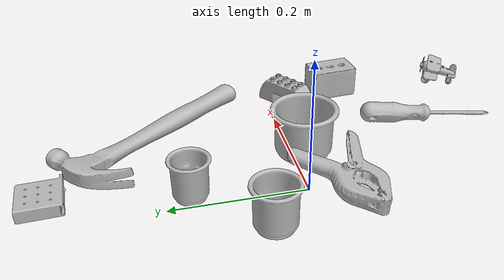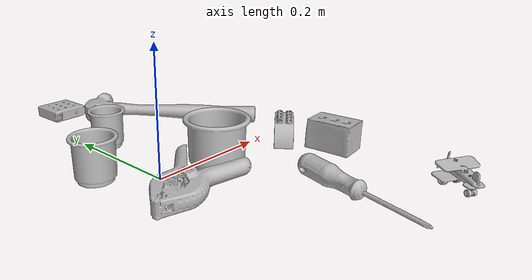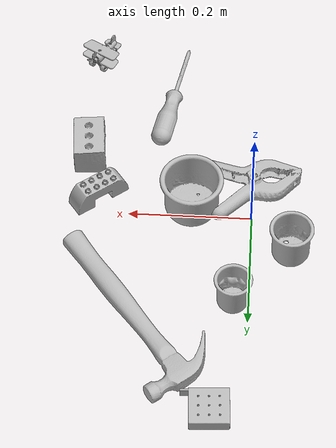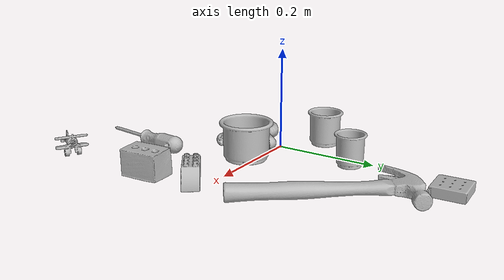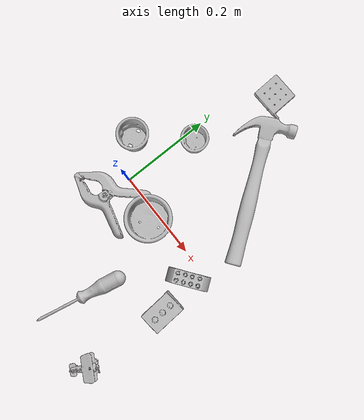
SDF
<sdf version="1.4">
  <world name="default">
    <light name="light1" type="point">
      <pose>0 0 1 0 0 0</pose>
      <diffuse>3 3 3 1</diffuse>
      <specular>3 3 3 1</specular>
    </light>
    <light name="light2" type="point">
      <pose>0 0.5 2 0 0 0</pose>
      <diffuse>1 1 1 1</diffuse>
      <specular>1 1 1 1</specular>
    </light>
    <light name="light3" type="point">
      <pose>0 0.5 2 0 0 0</pose>
      <diffuse>3 3 3 1</diffuse>
      <specular>3 3 3 1</specular>
    </light>
    <scene>
      <ambient>0.7 0.7 0.7</ambient>
    </scene>
    <model name="cup1">
      <link name="link_cup1">
        <collision name="default">
          <geometry>
            <mesh>
              <uri>model://j_cups/collision_meshes/collision.obj</uri>
              <scale>1.0 1.0 1.0</scale>
            </mesh>
          </geometry>
          <surface>
            <friction>
              <ode>
                <mu>0.5</mu>
                <mu2>0.5</mu2>
              </ode>
            </friction>
          <contact>
        <ode>
            <max_vel>0</max_vel>
            <min_depth>0.0001</min_depth>
            <kp>1e8</kp>
        </ode>
    </contact></surface>
        </collision>
        <visual name="default">
          <geometry>
            <mesh>
              <uri>model://j_cups/visual_meshes/visual.dae</uri>
              <scale>1.0 1.0 1.0</scale>
            </mesh>
          </geometry>
        </visual>
        <inertial>
          <mass>0.1112113818526268</mass>
          <pose>0.0006164852529764175 0.0005398975918069482 -0.0013479019980877638 0.030303955005909274 0.03757984422505388 0.4386955526072484</pose>
          <inertia>
            <ixx>0.00016329347</ixx>
            <iyy>0.00016499148</iyy>
            <izz>0.00018824349</izz>
            <ixy>0</ixy>
            <ixz>0</ixz>
            <iyz>0</iyz>
          </inertia>
        </inertial>
      </link>
      <pose>0.0980294868350029 -0.019607625901699066 0.03798900544643402 5.755162769988901e-08 3.91384881684182e-08 0.8175491965230288</pose>
    </model>
    <model name="cup2">
      <link name="link_cup2">
        <collision name="default">
          <geometry>
            <mesh>
              <uri>model://b_cups/collision_meshes/collision.obj</uri>
              <scale>1.0 1.0 1.0</scale>
            </mesh>
          </geometry>
          <surface>
            <friction>
              <ode>
                <mu>0.5</mu>
                <mu2>0.5</mu2>
              </ode>
            </friction>
          <contact>
        <ode>
            <max_vel>0</max_vel>
            <min_depth>0.0001</min_depth>
            <kp>1e8</kp>
        </ode>
    </contact></surface>
        </collision>
        <visual name="default">
          <geometry>
            <mesh>
              <uri>model://b_cups/visual_meshes/visual.dae</uri>
              <scale>1.0 1.0 1.0</scale>
            </mesh>
          </geometry>
        </visual>
        <inertial>
          <mass>0.040588438510894775</mass>
          <pose>0.0005182006862014532 0.001805859268642962 -0.001338181202299893 0.11356319114734177 0.03872522211554688 -0.34569586720892936</pose>
          <inertia>
            <ixx>2.6567977e-05</ixx>
            <iyy>2.6063572e-05</iyy>
            <izz>2.235645e-05</izz>
            <ixy>0</ixy>
            <ixz>0</ixz>
            <iyz>0</iyz>
          </inertia>
        </inertial>
      </link>
      <pose>0.02439250610768795 0.16338540613651276 0.03199625760316849 -0.007625097187774461 -0.003871663013366667 -3.111798397696703</pose>
    </model>
    <model name="cup3">
      <link name="link_cup3">
        <collision name="default">
          <geometry>
            <mesh>
              <uri>model://d_cups/collision_meshes/collision.obj</uri>
              <scale>1.0 1.0 1.0</scale>
            </mesh>
          </geometry>
          <surface>
            <friction>
              <ode>
                <mu>0.5</mu>
                <mu2>0.5</mu2>
              </ode>
            </friction>
          <contact>
        <ode>
            <max_vel>0</max_vel>
            <min_depth>0.0001</min_depth>
            <kp>1e8</kp>
        </ode>
    </contact></surface>
        </collision>
        <visual name="default">
          <geometry>
            <mesh>
              <uri>model://d_cups/visual_meshes/visual.dae</uri>
              <scale>1.0 1.0 1.0</scale>
            </mesh>
          </geometry>
        </visual>
        <inertial>
          <mass>0.030152590945363045</mass>
          <pose>0.000806804746389389 0.0019117394695058465 -0.0022666517179459333 0.2401234305416289 -0.2470973002062907 0.5942515272324471</pose>
          <inertia>
            <ixx>2.5244808e-05</ixx>
            <iyy>2.517175e-05</iyy>
            <izz>2.2850849e-05</izz>
            <ixy>0</ixy>
            <ixz>0</ixz>
            <iyz>0</iyz>
          </inertia>
        </inertial>
      </link>
      <pose>-0.06407365947961807 0.06532343477010727 0.034659046679735184 -1.693607816546099e-06 -8.369278374252903e-07 1.4128300964203473</pose>
    </model>
    <model name="toy1">
      <link name="link_toy1">
        <collision name="default">
          <geometry>
            <mesh>
              <uri>model://e_lego_duplo/collision_meshes/collision.obj</uri>
              <scale>1.0 1.0 1.0</scale>
            </mesh>
          </geometry>
          <surface>
            <friction>
              <ode>
                <mu>0.5</mu>
                <mu2>0.5</mu2>
              </ode>
            </friction>
          <contact>
        <ode>
            <max_vel>0</max_vel>
            <min_depth>0.0001</min_depth>
            <kp>1e8</kp>
        </ode>
    </contact></surface>
        </collision>
        <visual name="default">
          <geometry>
            <mesh>
              <uri>model://e_lego_duplo/visual_meshes/visual.dae</uri>
              <scale>1.0 1.0 1.0</scale>
            </mesh>
          </geometry>
        </visual>
        <inertial>
          <mass>0.09282131493091583</mass>
          <pose>0.0003256045747548342 0.00023485456767957658 0.0019521460635587573 -0.022567664257634346 -6.825452093688492e-05 -0.007625138047361518</pose>
          <inertia>
            <ixx>1.9356308e-05</ixx>
            <iyy>7.944328e-05</iyy>
            <izz>7.736177e-05</izz>
            <ixy>0</ixy>
            <ixz>0</ixz>
            <iyz>0</iyz>
          </inertia>
        </inertial>
      </link>
      <pose>0.250802606344223 -0.03383847326040268 0.02180897258222103 1.4676789190806928e-06 -4.353092886052398e-07 0.6431490003880804</pose>
    </model>
    <model name="toy2">
      <link name="link_toy2">
        <collision name="default">
          <geometry>
            <mesh>
              <uri>model://nine_hole_peg_test/collision_meshes/collision.obj</uri>
              <scale>0.5 0.5 0.5</scale>
            </mesh>
          </geometry>
          <surface>
            <friction>
              <ode>
                <mu>0.5</mu>
                <mu2>0.5</mu2>
              </ode>
            </friction>
          <contact>
        <ode>
            <max_vel>0</max_vel>
            <min_depth>0.0001</min_depth>
            <kp>1e8</kp>
        </ode>
    </contact></surface>
        </collision>
        <visual name="default">
          <geometry>
            <mesh>
              <uri>model://nine_hole_peg_test/visual_meshes/visual.dae</uri>
              <scale>0.5 0.5 0.5</scale>
            </mesh>
          </geometry>
        </visual>
        <inertial>
          <mass>0.0661587193608284</mass>
          <pose>-0.002308693015947938 -0.0048238071613013744 1.3230345757619943e-05 -0.0014666794270044752 0.0007194176174711586 -0.6342418340283942</pose>
          <inertia>
            <ixx>2.5862508e-05</ixx>
            <iyy>2.4147552e-05</iyy>
            <izz>4.531874e-05</izz>
            <ixy>0</ixy>
            <ixz>0</ixz>
            <iyz>0</iyz>
          </inertia>
        </inertial>
      </link>
      <pose>0.058284640312194824 0.36164963245391846 0.010385499335825443 -2.0631304572104163e-08 -3.939191725210296e-09 -1.5152327309258768</pose>
    </model>
    <model name="toy3">
      <link name="link_toy3">
        <collision name="default">
          <geometry>
            <mesh>
              <uri>model://foam_brick/collision_meshes/collision.obj</uri>
              <scale>1.0 1.0 1.0</scale>
            </mesh>
          </geometry>
          <surface>
            <friction>
              <ode>
                <mu>0.5</mu>
                <mu2>0.5</mu2>
              </ode>
            </friction>
          <contact>
        <ode>
            <max_vel>0</max_vel>
            <min_depth>0.0001</min_depth>
            <kp>1e8</kp>
        </ode>
    </contact></surface>
        </collision>
        <visual name="default">
          <geometry>
            <mesh>
              <uri>model://foam_brick/visual_meshes/visual.dae</uri>
              <scale>1.0 1.0 1.0</scale>
            </mesh>
          </geometry>
        </visual>
        <inertial>
          <mass>0.15239986777305603</mass>
          <pose>-0.00025224717683158815 0.0003458431747276336 -0.00025321010616607964 -0.29401565585717926 0.017274441097588973 -0.0007449887293440311</pose>
          <inertia>
            <ixx>6.6571105e-05</ixx>
            <iyy>0.00010628419</iyy>
            <izz>0.00010763494</izz>
            <ixy>0</ixy>
            <ixz>0</ixz>
            <iyz>0</iyz>
          </inertia>
        </inertial>
      </link>
      <pose>0.2717303931713104 -0.11963027715682983 0.025922799482941628 0.013417052319277001 0.004152429239505143 1.6538288511628647</pose>
    </model>
    <model name="toy4">
      <link name="link_toy4">
        <collision name="default">
          <geometry>
            <mesh>
              <uri>model://a_toy_airplane/collision_meshes/collision.obj</uri>
              <scale>0.25 0.25 0.25</scale>
            </mesh>
          </geometry>
          <surface>
            <friction>
              <ode>
                <mu>0.5</mu>
                <mu2>0.5</mu2>
              </ode>
            </friction>
          <contact>
        <ode>
            <max_vel>0</max_vel>
            <min_depth>0.0001</min_depth>
            <kp>1e8</kp>
        </ode>
    </contact></surface>
        </collision>
        <visual name="default">
          <geometry>
            <mesh>
              <uri>model://a_toy_airplane/visual_meshes/visual.dae</uri>
              <scale>0.25 0.25 0.25</scale>
            </mesh>
          </geometry>
        </visual>
        <inertial>
          <mass>0.01630575954914093</mass>
          <pose>0.006291272584348917 -0.0009268299327231944 -0.0002990612993016839 -0.012016942866631759 -0.1466350865210375 0.004149072887705313</pose>
          <inertia>
            <ixx>3.7008767e-06</ixx>
            <iyy>5.392928e-06</iyy>
            <izz>6.314456e-06</izz>
            <ixy>0</ixy>
            <ixz>0</ixz>
            <iyz>0</iyz>
          </inertia>
        </inertial>
      </link>
      <pose>0.26150527596473694 -0.3267178535461426 0.023089906200766563 -6.668235141130702e-05 1.4477494389747893e-06 1.0430308073306016</pose>
    </model>
    <model name="hardware1">
      <link name="link_hardware1">
        <collision name="default">
          <geometry>
            <mesh>
              <uri>model://phillips_screwdriver/collision_meshes/collision.obj</uri>
              <scale>1.0 1.0 1.0</scale>
            </mesh>
          </geometry>
          <surface>
            <friction>
              <ode>
                <mu>0.5</mu>
                <mu2>0.5</mu2>
              </ode>
            </friction>
          <contact>
        <ode>
            <max_vel>0</max_vel>
            <min_depth>0.0001</min_depth>
            <kp>1e8</kp>
        </ode>
    </contact></surface>
        </collision>
        <visual name="default">
          <geometry>
            <mesh>
              <uri>model://phillips_screwdriver/visual_meshes/visual.dae</uri>
              <scale>1.0 1.0 1.0</scale>
            </mesh>
          </geometry>
        </visual>
        <inertial>
          <mass>0.05757145583629608</mass>
          <pose>-0.04777182266116142 0.001036230125464499 -0.000455554953077808 -0.1572215307256514 0.005850991069928943 -0.0021567397451199392</pose>
          <inertia>
            <ixx>6.764056e-06</ixx>
            <iyy>8.480946e-05</iyy>
            <izz>8.4881525e-05</izz>
            <ixy>0</ixy>
            <ixz>0</ixz>
            <iyz>0</iyz>
          </inertia>
        </inertial>
      </link>
      <pose>0.13731522858142853 -0.2381480634212494 0.015409653075039387 0.06561080195241747 0.03756824854349733 -1.7568316298460718</pose>
    </model>
    <model name="hardware2">
      <link name="link_hardware2">
        <collision name="default">
          <geometry>
            <mesh>
              <uri>model://hammer/collision_meshes/collision.obj</uri>
              <scale>1.0 1.0 1.0</scale>
            </mesh>
          </geometry>
          <surface>
            <friction>
              <ode>
                <mu>0.5</mu>
                <mu2>0.5</mu2>
              </ode>
            </friction>
          <contact>
        <ode>
            <max_vel>0</max_vel>
            <min_depth>0.0001</min_depth>
            <kp>1e8</kp>
        </ode>
    </contact></surface>
        </collision>
        <visual name="default">
          <geometry>
            <mesh>
              <uri>model://hammer/visual_meshes/visual.dae</uri>
              <scale>1.0 1.0 1.0</scale>
            </mesh>
          </geometry>
        </visual>
        <inertial>
          <mass>0.19043192267417908</mass>
          <pose>0.00941577646881342 -0.011892358772456646 -0.0001235063245985657 0.023155672419862355 -0.004792164441448863 -0.012760315407460211</pose>
          <inertia>
            <ixx>8.15718e-05</ixx>
            <iyy>0.0022103586</iyy>
            <izz>0.002273686</izz>
            <ixy>0</ixy>
            <ixz>0</ixz>
            <iyz>0</iyz>
          </inertia>
        </inertial>
      </link>
      <pose>0.1708475798368454 0.19594241678714752 0.01626737229526043 -0.005199085974926039 -0.0013802266451997491 2.2159645023686227</pose>
    </model>
    <model name="hardware3">
      <link name="link_hardware3">
        <collision name="default">
          <geometry>
            <mesh>
              <uri>model://large_clamp/collision_meshes/collision.obj</uri>
              <scale>1.0 1.0 1.0</scale>
            </mesh>
          </geometry>
          <surface>
            <friction>
              <ode>
                <mu>0.5</mu>
                <mu2>0.5</mu2>
              </ode>
            </friction>
          <contact>
        <ode>
            <max_vel>0</max_vel>
            <min_depth>0.0001</min_depth>
            <kp>1e8</kp>
        </ode>
    </contact></surface>
        </collision>
        <visual name="default">
          <geometry>
            <mesh>
              <uri>model://large_clamp/visual_meshes/visual.dae</uri>
              <scale>1.0 1.0 1.0</scale>
            </mesh>
          </geometry>
        </visual>
        <inertial>
          <mass>0.18636001646518707</mass>
          <pose>0.006369354669004679 0.0003585688828025013 -0.0001839799078879878 -0.0021330740505354343 0.009671591251539349 0.02663317297682702</pose>
          <inertia>
            <ixx>0.0001644205</ixx>
            <iyy>0.00031224336</iyy>
            <izz>0.00045169977</izz>
            <ixy>0</ixy>
            <ixz>0</ixz>
            <iyz>0</iyz>
          </inertia>
        </inertial>
      </link>
      <pose>-0.00033890828490257263 -0.06034417822957039 0.018503554165363312 -0.011698133330807967 0.0469264030594599 -2.880570551105744</pose>
    </model>
  <physics type="ode">
      <max_contacts>50</max_contacts>
      <ode>
        <solver>
          <type>quick</type>
          <iters>75</iters>
        </solver>
        <constraints>
          <contact_max_correcting_vel>0</contact_max_correcting_vel>
          <contact_surface_layer>0</contact_surface_layer>
        </constraints>
      </ode>
    </physics></world>
</sdf>
